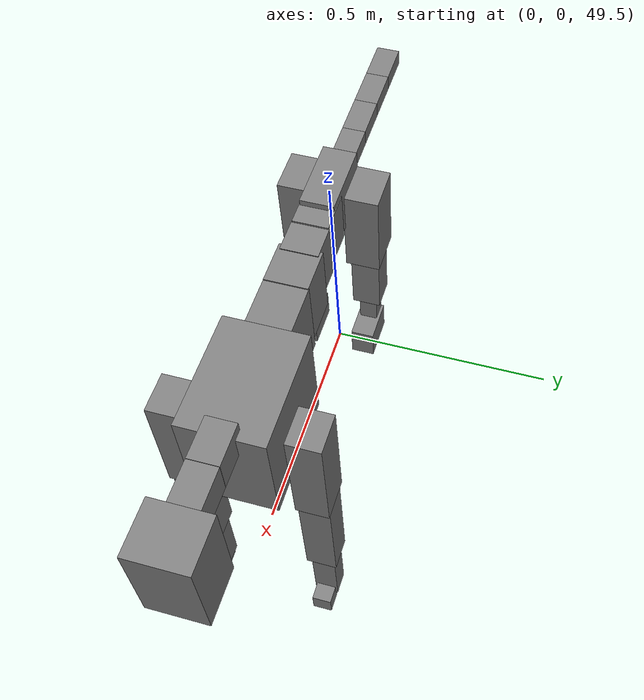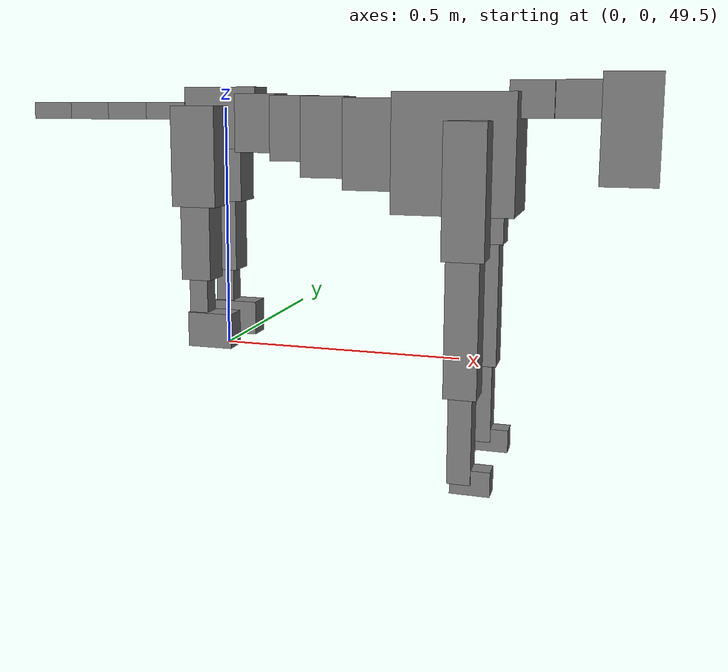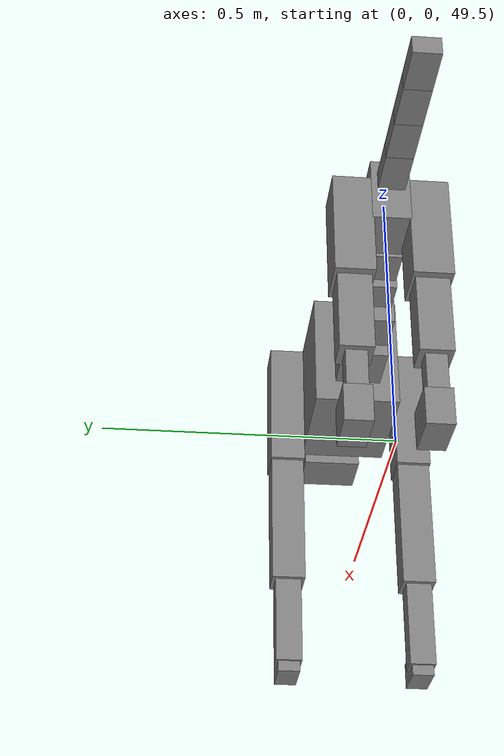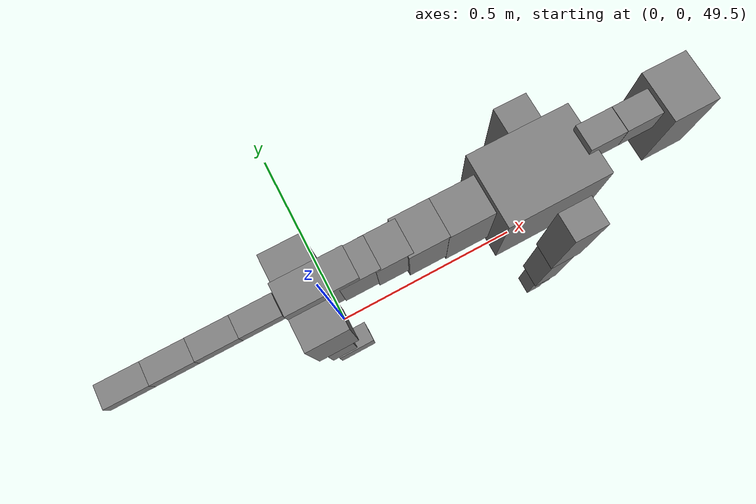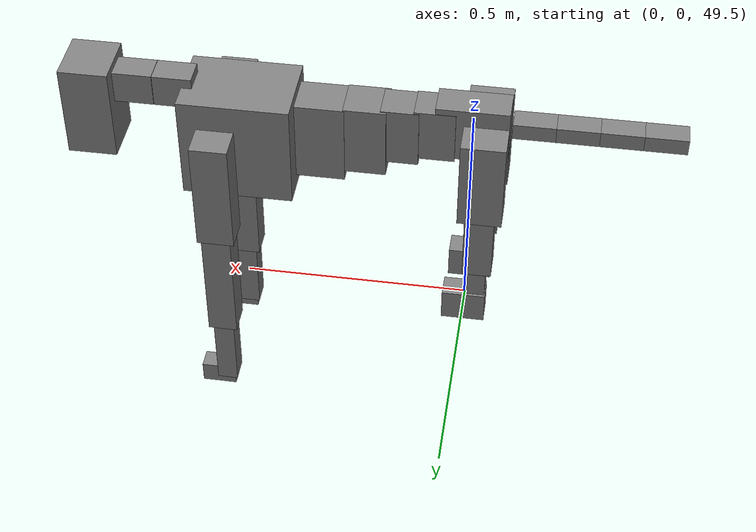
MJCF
<mujoco model="dog">

    <default>
        <joint armature="0.02" stiffness="1" damping="0.2" limited="true"/>
        <geom condim="3" friction="1 0.05 0.05" margin="0.01"/>
        <motor ctrllimited="true" ctrlrange="-1.0 1.0" forcelimited="true" gear="50"/>
    </default>

    <compiler inertiafromgeom="true" angle="radian"/>

    <option timestep="0.016" iterations="50" tolerance="1e-10" solver="Newton" jacobian="dense" cone="pyramidal"/>

    <size nconmax="20000" njmax="60000" nstack="5000000"/>
    <visual>
        <map force="0.1" zfar="30"/>
        <rgba haze="0.15 0.25 0.35 1"/>
        <quality shadowsize="2048"/>
        <global offwidth="800" offheight="800"/>
    </visual>

    <asset>
        <texture type="skybox" builtin="gradient" rgb1="0.3 0.5 0.7" rgb2="0 0 0" width="512" height="512"/>
        <texture name="texplane" type="2d" builtin="checker" rgb1=".2 .3 .4" rgb2=".1 0.15 0.2" width="512" height="512"
                 mark="cross" markrgb=".8 .8 .8"/>
        <texture name="texgeom" type="cube" builtin="flat" mark="cross" width="127" height="1278" rgb1="0.8 0.6 0.4"
                 rgb2="0.8 0.6 0.4" markrgb="1 1 1" random="0.01"/>

        <material name="matplane" reflectance="0.3" texture="texplane" texrepeat="1 1" texuniform="true"/>
        <material name="matgeom" texture="texgeom" texuniform="true" rgba="0.8 0.6 .4 1"/>
    </asset>

    <worldbody>
        <geom name="floor" pos="0 0 0" size="0 0 .25" type="plane" material="matplane" condim="3"/>

        <light directional="false" diffuse=".2 .2 .2" specular="0 0 0" pos="0 0 5" dir="0 0 -1" castshadow="false"/>
        <light mode="targetbodycom" target="torso" directional="false" diffuse=".8 .8 .8" specular="0.3 0.3 0.3"
               pos="0 0 4.0" dir="0 0 -1"/>

        <body name="root" pos="0 0 50">
            <freejoint name="root_1"/>
            <geom type="box" pos="0 0 -0.02" size="0.0774  0.0358  0.063" density="2030"/>

            <body name="spine1" pos="0.054 0 0">
                <joint name="spine1_y" axis="0 1 0" range="0 0.7" limited="true"/>
                <geom type="box" pos="0.02375 0 -0.03" size="0.04375  0.0375  0.05985" density="2030"/>

                <body name="spine2" pos="0.0612 0 0">
                    <joint name="spine2_y" axis="0 1 0" range="-0.15 0.15" limited="true"/>
                    <geom type="box" pos="0.03555  0  -0.04" size="0.04055  0.039  0.06615" density="2030"/>

                    <body name="spine3" pos="0.0730 0 0">
                        <joint name="spine3_y" axis="0 1 0" range="-0.15 0.15" limited="true"/>
                        <geom type="box" pos="0.03555  0  -0.057" size="0.04555  0.0445  0.081" density="2030"/>

                        <body name="spine4" pos="0.0780 0 0">
                            <joint name="spine4_y" axis="0 1 0" range="-0.15 0.15" limited="true"/>
                            <geom type="box" pos="0.05265  0  -0.07" size="0.05265  0.045  0.09135" density="2030"/>

                            <body name="torso" pos="0.1082 0 0">
                                <joint name="torso_y" axis="0 1 0" range="-0.15 0.15" limited="true"/>
                                <geom type="box" pos="0.11925  0  -0.085" size="0.11925  0.085  0.11745"
                                      density="2030"/>

                                <body name="neck1" pos="0.2160  0   0.0180">
                                    <joint name="neck1_y" axis="0 1 0" range="-1.2  -1" limited="true"/>
                                    <geom type="box" pos="0.0423  0  0" size="0.0423  0.03  0.036" density="2325"/>

                                    <body name="neck2" pos="0.0853  0  0">
                                        <joint name="neck2_y" axis="0 1 0" range="0.1  0" limited="true"/>
                                        <geom type="box" pos="0.0423  0  0" size="0.0423  0.03  0.036" density="2325"/>

                                        <body name="head" pos="0.0853  0  0">
                                            <joint name="head_y" axis="0 1 0" range="-0.3  -0.2" limited="true"/>
                                            <geom type="box" pos="0.0531  0  -0.055" size="0.0531  0.06  0.1044"
                                                  density="4030"/>

                                        </body>
                                    </body>
                                </body>

                                <body name="front_shoulder" pos="0.156  0   -0.0480">
                                    <joint name="front_shoulder_y" axis="0 1 0" range="-1 1.5" limited="true"/>
                                    <geom type="box" pos="0 0.13 -0.1015" size="0.0402  0.0344  0.1281" density="1158"/>
                                    <geom type="box" pos="0 -0.13 -0.1015" size="0.0402  0.0344  0.1281"
                                          density="1158"/>

                                    <body name="front_elbow" pos="0  0  -0.2029">
                                        <joint name="front_elbow_y" axis="0 1 0" range="-2 0" limited="true"/>
                                        <geom type="box" pos="0 0.13 -0.1436" size="0.0318  0.0325  0.1436"
                                              density="1081"/>
                                        <geom type="box" pos="0 -0.13 -0.1436" size="0.0318  0.0325  0.1436"
                                              density="1081"/>

                                        <body name="front_wrist" pos="0  0  -0.2872">
                                            <joint name="front_wrist_y" axis="0 1 0" range="-0.2 0" limited="true"/>
                                            <geom type="box" pos="0 0.13 -0.0775" size="0.0227  0.0253  0.0906"
                                                  density="1664"/>
                                            <geom type="box" pos="0 -0.13 -0.0775" size="0.0227  0.0253  0.0906"
                                                  density="1664"/>

                                            <body name="front_finger_end" pos="0  0  -0.1549">
                                                <joint name="front_finger_y" axis="0 1 0" range="-0.4 1"
                                                       limited="true"/>
                                                <geom type="box" pos="0.0210  0.13  -0.0094"
                                                      size="0.0385  0.0210  0.0244" density="1515"/>
                                                <geom type="box" pos="0.0210  -0.13  -0.0094"
                                                      size="0.0385  0.0210  0.0244" density="1515"/>

                                            </body>

                                        </body>
                                    </body>
                                </body>

                            </body>
                        </body>
                    </body>
                </body>
            </body>

            <body name="back_hip" pos="-0.03 0 -0.018">
                <joint name="back_hip_y" axis="0 1 0" range="-1.5 0.3" limited="true"/>
                <geom type="box" pos="0 0.07 -0.0789" size="0.0472  0.0370  0.1017" density="1154"/>
                <geom type="box" pos="0 -0.07 -0.0789" size="0.0472  0.0370  0.1017" density="1154"/>

                <body name="back_knee" pos="0  0  -0.1579">
                    <joint name="back_knee_y" axis="0 1 0" range="0 2.8" limited="true"/>
                    <geom type="box" pos="0 0.07 -0.0791" size="0.0316  0.0312  0.0947" density="1227"/>
                    <geom type="box" pos="0 -0.07 -0.0791" size="0.0316  0.0312  0.0947" density="1227"/>

                    <body name="back_ankle" pos="0  0  -0.1582">
                        <joint name="back_ankle_y" axis="0 1 0" range="-2.2 0" limited="true"/>
                        <geom type="box" pos="0 0.07 -0.0500" size="0.0196  0.0196  0.0613" density="1284"/>
                        <geom type="box" pos="0 -0.07 -0.0500" size="0.0196  0.0196  0.0613" density="1284"/>

                        <body name="back_toe_end" pos="0  0  -0.1000">
                            <joint name="back_toe_y" axis="0 1 0" range="-0.4 1" limited="true"/>
                            <geom type="box" pos="0.0258  0.07  -0.0208" size="0.0473  0.0258  0.0358" density="1515"/>
                            <geom type="box" pos="0.0258  -0.07  -0.0208" size="0.0473  0.0258  0.0358" density="1515"/>

                        </body>
                    </body>
                </body>
            </body>

            <body name="tail1" pos="-0.074 0 -0.006">
                <joint name="tail1_y" axis="0 1 0" range="-0.2 0.2" limited="true"/>
                <geom type="box" pos="-0.0536  0  0" size="0.045  0.025  0.0175" density="1587"/>

                <body name="tail2" pos="-0.09 0 0">
                    <joint name="tail2_y" axis="0 1 0" range="-0.2 0.2" limited="true"/>
                    <geom type="box" pos="-0.0536  0  0" size="0.045  0.025  0.0175" density="1587"/>

                    <body name="tail3" pos="-0.09 0 0">
                        <joint name="tail3_y" axis="0 1 0" range="-0.2 0.2" limited="true"/>
                        <geom type="box" pos="-0.0536  0  0" size="0.045  0.025  0.0175" density="1587"/>

                        <body name="tail4" pos="-0.09 0 0">
                            <joint name="tail4_y" axis="0 1 0" range="-0.2 0.2" limited="true"/>
                            <geom type="box" pos="-0.0536  0  0" size="0.045  0.025  0.0175" density="1587"/>

                        </body>
                    </body>
                </body>
            </body>
        </body>
    </worldbody>

    <actuator>
        <motor joint="spine1_y" forcerange="-150 150     "/>
        <motor joint="spine2_y" forcerange="-150 150     "/>
        <motor joint="spine3_y" forcerange="-150 150     "/>
        <motor joint="spine4_y" forcerange="-150 150     "/>
        <motor joint="torso_y" forcerange="-150 150     "/>
        <motor joint="neck1_y" forcerange="-100 100       "/>
        <motor joint="neck2_y" forcerange="-100 100       "/>
        <motor joint="head_y" forcerange="-150 150       "/>
        <motor joint="front_shoulder_y" forcerange="-190.77 138.54"/>
        <motor joint="front_elbow_y" forcerange="-195.75 140.59"/>
        <motor joint="front_wrist_y" forcerange="-56.03 146.12"/>
        <motor joint="front_finger_y" forcerange="-36.19 35.68"/>
        <motor joint="back_hip_y" forcerange="-379.03 314.06"/>
        <motor joint="back_knee_y" forcerange="-325.14 328.34"/>
        <motor joint="back_angle_y" forcerange="-113.85 100.40"/>
        <motor joint="back_toe_y" forcerange="-50.11 76.26"/>
        <motor joint="tail1_y" forcerange="-50 50     "/>
        <motor joint="tail2_y" forcerange="-50 50     "/>
        <motor joint="tail3_y" forcerange="-50 50     "/>
        <motor joint="tail4_y" forcerange="-50 50     "/>
    </actuator>
</mujoco>
